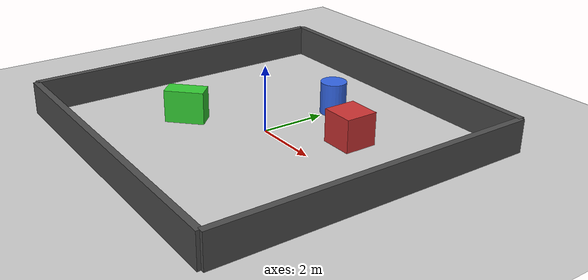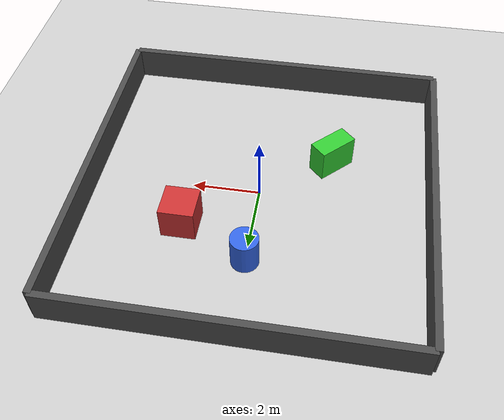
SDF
<?xml version="1.0" ?>
<sdf version="1.8">
  <world name="test_arena">
    <!-- Fizik Ayarları -->
    <physics name="1ms" type="ignored">
      <max_step_size>0.001</max_step_size>
      <real_time_factor>1.0</real_time_factor>
    </physics>

    <!-- Temel Eklentiler -->
    <plugin filename="gz-sim-physics-system" name="gz::sim::systems::Physics"/>
    <plugin filename="gz-sim-user-commands-system" name="gz::sim::systems::UserCommands"/>
    <plugin filename="gz-sim-scene-broadcaster-system" name="gz::sim::systems::SceneBroadcaster"/>
    <plugin filename="gz-sim-sensors-system" name="gz::sim::systems::Sensors">
      <render_engine>ogre2</render_engine>
    </plugin>
    <!-- IMU ve GPS sensörleri bu sistemler olmadan veri üretmez -->
    <plugin filename="gz-sim-imu-system" name="gz::sim::systems::Imu"/>
    <plugin filename="gz-sim-navsat-system" name="gz::sim::systems::NavSat"/>

    <!-- GPS referansı: dünya orijini bu koordinata denk gelir (AGÜ, Kayseri) -->
    <spherical_coordinates>
      <surface_model>EARTH_WGS84</surface_model>
      <world_frame_orientation>ENU</world_frame_orientation>
      <latitude_deg>38.7370</latitude_deg>
      <longitude_deg>35.4730</longitude_deg>
      <elevation>1050</elevation>
      <heading_deg>0</heading_deg>
    </spherical_coordinates>

    <!-- Güneş / Işık -->
    <light type="directional" name="sun">
      <cast_shadows>true</cast_shadows>
      <pose>0 0 10 0 0 0</pose>
      <diffuse>0.8 0.8 0.8 1</diffuse>
      <specular>0.2 0.2 0.2 1</specular>
      <direction>-0.5 0.1 -0.9</direction>
    </light>

    <!-- Zemin -->
    <model name="ground_plane">
      <static>true</static>
      <link name="link">
        <collision name="collision">
          <geometry><plane><normal>0 0 1</normal></plane></geometry>
        </collision>
        <visual name="visual">
          <geometry><plane><normal>0 0 1</normal><size>50 50</size></plane></geometry>
          <material>
            <ambient>0.8 0.8 0.8 1</ambient>
            <diffuse>0.8 0.8 0.8 1</diffuse>
          </material>
        </visual>
      </link>
    </model>

    <!-- Dış Duvarlar (10x10 metre kapalı alan) -->
    <model name="outer_walls">
      <static>true</static>
      <!-- Kuzey Duvarı -->
      <link name="north_wall">
        <pose>0 5 0.5 0 0 0</pose>
        <collision name="col"><geometry><box><size>10 0.2 1.0</size></box></geometry></collision>
        <visual name="vis"><geometry><box><size>10 0.2 1.0</size></box></geometry><material><diffuse>0.3 0.3 0.3 1</diffuse></material></visual>
      </link>
      <!-- Güney Duvarı -->
      <link name="south_wall">
        <pose>0 -5 0.5 0 0 0</pose>
        <collision name="col"><geometry><box><size>10 0.2 1.0</size></box></geometry></collision>
        <visual name="vis"><geometry><box><size>10 0.2 1.0</size></box></geometry><material><diffuse>0.3 0.3 0.3 1</diffuse></material></visual>
      </link>
      <!-- Doğu Duvarı -->
      <link name="east_wall">
        <pose>5 0 0.5 0 0 0</pose>
        <collision name="col"><geometry><box><size>0.2 10 1.0</size></box></geometry></collision>
        <visual name="vis"><geometry><box><size>0.2 10 1.0</size></box></geometry><material><diffuse>0.3 0.3 0.3 1</diffuse></material></visual>
      </link>
      <!-- Batı Duvarı -->
      <link name="west_wall">
        <pose>-5 0 0.5 0 0 0</pose>
        <collision name="col"><geometry><box><size>0.2 10 1.0</size></box></geometry></collision>
        <visual name="vis"><geometry><box><size>0.2 10 1.0</size></box></geometry><material><diffuse>0.3 0.3 0.3 1</diffuse></material></visual>
      </link>
    </model>

    <!-- İç Engeller (Sütunlar ve Kutular) -->
    <model name="obstacle_box_1">
      <static>true</static>
      <pose>2 1.5 0.5 0 0 0</pose>
      <link name="link">
        <collision name="c"><geometry><box><size>1 1 1</size></box></geometry></collision>
        <visual name="v"><geometry><box><size>1 1 1</size></box></geometry><material><diffuse>0.8 0.2 0.2 1</diffuse></material></visual>
      </link>
    </model>

    <model name="obstacle_box_2">
      <static>true</static>
      <pose>-2 -1.5 0.5 0 0 0.785</pose>
      <link name="link">
        <collision name="c"><geometry><box><size>1.2 0.6 1</size></box></geometry></collision>
        <visual name="v"><geometry><box><size>1.2 0.6 1</size></box></geometry><material><diffuse>0.2 0.8 0.2 1</diffuse></material></visual>
      </link>
    </model>

    <model name="obstacle_cylinder">
      <static>true</static>
      <pose>0 2.5 0.5 0 0 0</pose>
      <link name="link">
        <collision name="c"><geometry><cylinder><radius>0.4</radius><length>1</length></cylinder></geometry></collision>
        <visual name="v"><geometry><cylinder><radius>0.4</radius><length>1</length></cylinder></geometry><material><diffuse>0.2 0.4 0.9 1</diffuse></material></visual>
      </link>
    </model>

  </world>
</sdf>
